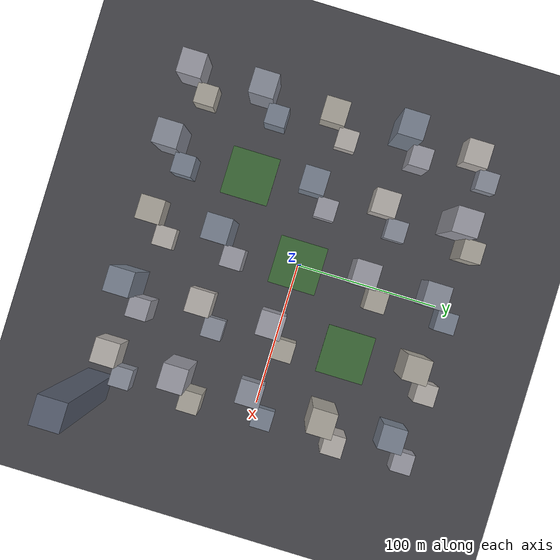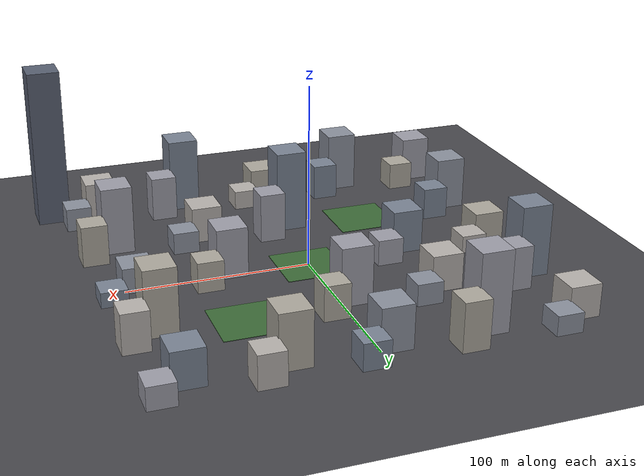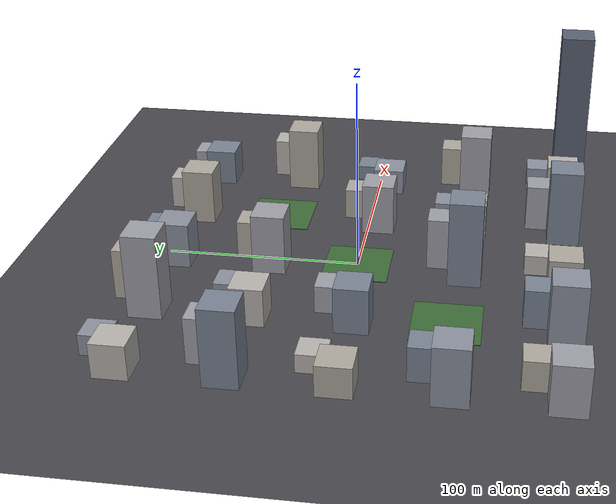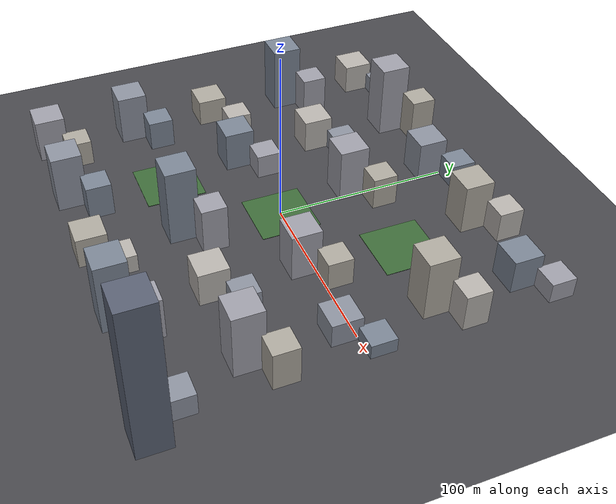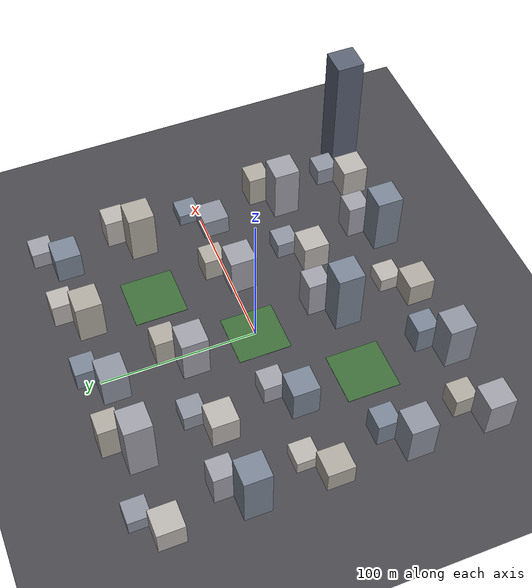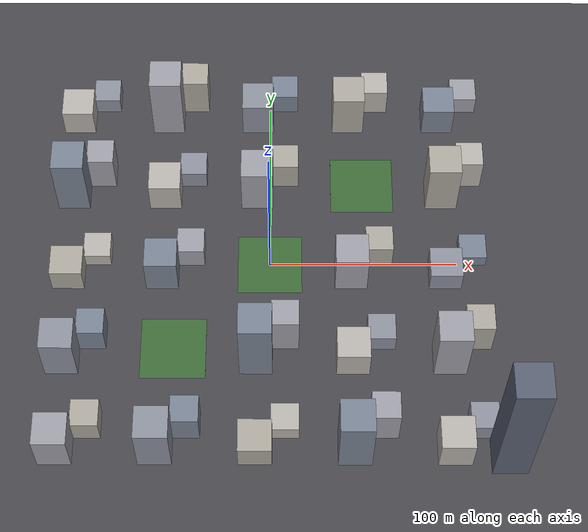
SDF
<?xml version="1.0" encoding="UTF-8"?>
<!-- Generated for Agentic Robotics. Primitives only: no Fuel dependencies, so
     it loads identically offline and on a CPU-only machine. -->
<sdf version="1.9">
  <world name="agr_city">
    <physics type="ode">
      <max_step_size>0.004</max_step_size>
      <real_time_factor>1.0</real_time_factor>
      <real_time_update_rate>250</real_time_update_rate>
    </physics>
    <gravity>0 0 -9.8</gravity>
    <magnetic_field>6e-06 2.3e-05 -4.2e-05</magnetic_field>
    <atmosphere type="adiabatic"/>
    <scene>
      <grid>false</grid>
      <ambient>0.45 0.45 0.45 1</ambient>
      <background>0.75 0.80 0.88 1</background>
      <shadows>true</shadows>
    </scene>

    <model name="ground_plane">
      <static>true</static>
      <link name="link">
        <collision name="collision">
          <geometry><plane><normal>0 0 1</normal><size>1 1</size></plane></geometry>
          <surface><friction><ode/></friction><bounce/><contact/></surface>
        </collision>
        <visual name="visual">
          <geometry><plane><normal>0 0 1</normal><size>1000 1000</size></plane></geometry>
          <material>
            <ambient>0.28 0.28 0.3 1</ambient>
            <diffuse>0.28 0.28 0.3 1</diffuse>
            <specular>0.1 0.1 0.1 1</specular>
          </material>
        </visual>
      </link>
    </model>

    <light name="sunUTC" type="directional">
      <pose>0 0 500 0 -0 0</pose>
      <cast_shadows>true</cast_shadows>
      <intensity>1</intensity>
      <direction>0.001 0.625 -0.78</direction>
      <diffuse>0.904 0.904 0.904 1</diffuse>
      <specular>0.271 0.271 0.271 1</specular>
      <attenuation><range>2000</range><linear>0</linear><constant>1</constant><quadratic>0</quadratic></attenuation>
      <spot><inner_angle>0</inner_angle><outer_angle>0</outer_angle><falloff>0</falloff></spot>
    </light>

    <spherical_coordinates>
      <surface_model>EARTH_WGS84</surface_model>
      <world_frame_orientation>ENU</world_frame_orientation>
      <latitude_deg>24.7136</latitude_deg>
      <longitude_deg>46.6753</longitude_deg>
      <elevation>612</elevation>
    </spherical_coordinates>

    <model name="bldg_0_0a">
      <static>true</static>
      <pose>-107.00 -106.00 13.00 0 0 0.0000</pose>
      <link name="link">
        <collision name="c">
          <geometry><box><size>17.0 17.0 26</size></box></geometry>
        </collision>
        <visual name="v">
          <geometry><box><size>17.0 17.0 26</size></box></geometry>
          <material>
            <ambient>0.62 0.62 0.66 1</ambient>
            <diffuse>0.62 0.62 0.66 1</diffuse>
            <specular>0.2 0.2 0.2 1</specular>
          </material>

        </visual>
      </link>
    </model>
    <model name="bldg_0_0b">
      <static>true</static>
      <pose>-92.00 -93.00 7.80 0 0 0.0000</pose>
      <link name="link">
        <collision name="c">
          <geometry><box><size>14.28 14.28 15.6</size></box></geometry>
        </collision>
        <visual name="v">
          <geometry><box><size>14.28 14.28 15.6</size></box></geometry>
          <material>
            <ambient>0.68 0.66 0.62 1</ambient>
            <diffuse>0.68 0.66 0.62 1</diffuse>
            <specular>0.2 0.2 0.2 1</specular>
          </material>

        </visual>
      </link>
    </model>
    <model name="bldg_0_1a">
      <static>true</static>
      <pose>-57.00 -106.00 17.00 0 0 0.0000</pose>
      <link name="link">
        <collision name="c">
          <geometry><box><size>17.0 17.0 34</size></box></geometry>
        </collision>
        <visual name="v">
          <geometry><box><size>17.0 17.0 34</size></box></geometry>
          <material>
            <ambient>0.55 0.57 0.62 1</ambient>
            <diffuse>0.55 0.57 0.62 1</diffuse>
            <specular>0.2 0.2 0.2 1</specular>
          </material>

        </visual>
      </link>
    </model>
    <model name="bldg_0_1b">
      <static>true</static>
      <pose>-42.00 -93.00 10.20 0 0 0.0000</pose>
      <link name="link">
        <collision name="c">
          <geometry><box><size>14.28 14.28 20.4</size></box></geometry>
        </collision>
        <visual name="v">
          <geometry><box><size>14.28 14.28 20.4</size></box></geometry>
          <material>
            <ambient>0.48 0.52 0.58 1</ambient>
            <diffuse>0.48 0.52 0.58 1</diffuse>
            <specular>0.2 0.2 0.2 1</specular>
          </material>

        </visual>
      </link>
    </model>
    <model name="bldg_0_2a">
      <static>true</static>
      <pose>-7.00 -106.00 9.00 0 0 0.0000</pose>
      <link name="link">
        <collision name="c">
          <geometry><box><size>17.0 17.0 18</size></box></geometry>
        </collision>
        <visual name="v">
          <geometry><box><size>17.0 17.0 18</size></box></geometry>
          <material>
            <ambient>0.68 0.66 0.62 1</ambient>
            <diffuse>0.68 0.66 0.62 1</diffuse>
            <specular>0.2 0.2 0.2 1</specular>
          </material>

        </visual>
      </link>
    </model>
    <model name="bldg_0_2b">
      <static>true</static>
      <pose>8.00 -93.00 5.40 0 0 0.0000</pose>
      <link name="link">
        <collision name="c">
          <geometry><box><size>14.28 14.28 10.799999999999999</size></box></geometry>
        </collision>
        <visual name="v">
          <geometry><box><size>14.28 14.28 10.799999999999999</size></box></geometry>
          <material>
            <ambient>0.72 0.7 0.68 1</ambient>
            <diffuse>0.72 0.7 0.68 1</diffuse>
            <specular>0.2 0.2 0.2 1</specular>
          </material>

        </visual>
      </link>
    </model>
    <model name="bldg_0_3a">
      <static>true</static>
      <pose>43.00 -106.00 21.00 0 0 0.0000</pose>
      <link name="link">
        <collision name="c">
          <geometry><box><size>17.0 17.0 42</size></box></geometry>
        </collision>
        <visual name="v">
          <geometry><box><size>17.0 17.0 42</size></box></geometry>
          <material>
            <ambient>0.48 0.52 0.58 1</ambient>
            <diffuse>0.48 0.52 0.58 1</diffuse>
            <specular>0.2 0.2 0.2 1</specular>
          </material>

        </visual>
      </link>
    </model>
    <model name="bldg_0_3b">
      <static>true</static>
      <pose>58.00 -93.00 12.60 0 0 0.0000</pose>
      <link name="link">
        <collision name="c">
          <geometry><box><size>14.28 14.28 25.2</size></box></geometry>
        </collision>
        <visual name="v">
          <geometry><box><size>14.28 14.28 25.2</size></box></geometry>
          <material>
            <ambient>0.62 0.62 0.66 1</ambient>
            <diffuse>0.62 0.62 0.66 1</diffuse>
            <specular>0.2 0.2 0.2 1</specular>
          </material>

        </visual>
      </link>
    </model>
    <model name="bldg_0_4a">
      <static>true</static>
      <pose>93.00 -106.00 11.00 0 0 0.0000</pose>
      <link name="link">
        <collision name="c">
          <geometry><box><size>17.0 17.0 22</size></box></geometry>
        </collision>
        <visual name="v">
          <geometry><box><size>17.0 17.0 22</size></box></geometry>
          <material>
            <ambient>0.72 0.7 0.68 1</ambient>
            <diffuse>0.72 0.7 0.68 1</diffuse>
            <specular>0.2 0.2 0.2 1</specular>
          </material>

        </visual>
      </link>
    </model>
    <model name="bldg_0_4b">
      <static>true</static>
      <pose>108.00 -93.00 6.60 0 0 0.0000</pose>
      <link name="link">
        <collision name="c">
          <geometry><box><size>14.28 14.28 13.2</size></box></geometry>
        </collision>
        <visual name="v">
          <geometry><box><size>14.28 14.28 13.2</size></box></geometry>
          <material>
            <ambient>0.55 0.57 0.62 1</ambient>
            <diffuse>0.55 0.57 0.62 1</diffuse>
            <specular>0.2 0.2 0.2 1</specular>
          </material>

        </visual>
      </link>
    </model>
    <model name="bldg_1_0a">
      <static>true</static>
      <pose>-107.00 -56.00 15.00 0 0 0.0000</pose>
      <link name="link">
        <collision name="c">
          <geometry><box><size>17.0 17.0 30</size></box></geometry>
        </collision>
        <visual name="v">
          <geometry><box><size>17.0 17.0 30</size></box></geometry>
          <material>
            <ambient>0.55 0.57 0.62 1</ambient>
            <diffuse>0.55 0.57 0.62 1</diffuse>
            <specular>0.2 0.2 0.2 1</specular>
          </material>

        </visual>
      </link>
    </model>
    <model name="bldg_1_0b">
      <static>true</static>
      <pose>-92.00 -43.00 9.00 0 0 0.0000</pose>
      <link name="link">
        <collision name="c">
          <geometry><box><size>14.28 14.28 18.0</size></box></geometry>
        </collision>
        <visual name="v">
          <geometry><box><size>14.28 14.28 18.0</size></box></geometry>
          <material>
            <ambient>0.48 0.52 0.58 1</ambient>
            <diffuse>0.48 0.52 0.58 1</diffuse>
            <specular>0.2 0.2 0.2 1</specular>
          </material>

        </visual>
      </link>
    </model>
    <model name="park_1_1">
      <static>true</static>
      <pose>-50.00 -50.00 0.15 0 0 0.0000</pose>
      <link name="link">
        <collision name="c">
          <geometry><box><size>34.0 34.0 0.3</size></box></geometry>
        </collision>
        <visual name="v">
          <geometry><box><size>34.0 34.0 0.3</size></box></geometry>
          <material>
            <ambient>0.24 0.42 0.22 1</ambient>
            <diffuse>0.24 0.42 0.22 1</diffuse>
            <specular>0.2 0.2 0.2 1</specular>
          </material>

        </visual>
      </link>
    </model>
    <model name="bldg_1_2a">
      <static>true</static>
      <pose>-7.00 -56.00 23.00 0 0 0.0000</pose>
      <link name="link">
        <collision name="c">
          <geometry><box><size>17.0 17.0 46</size></box></geometry>
        </collision>
        <visual name="v">
          <geometry><box><size>17.0 17.0 46</size></box></geometry>
          <material>
            <ambient>0.48 0.52 0.58 1</ambient>
            <diffuse>0.48 0.52 0.58 1</diffuse>
            <specular>0.2 0.2 0.2 1</specular>
          </material>

        </visual>
      </link>
    </model>
    <model name="bldg_1_2b">
      <static>true</static>
      <pose>8.00 -43.00 13.80 0 0 0.0000</pose>
      <link name="link">
        <collision name="c">
          <geometry><box><size>14.28 14.28 27.599999999999998</size></box></geometry>
        </collision>
        <visual name="v">
          <geometry><box><size>14.28 14.28 27.599999999999998</size></box></geometry>
          <material>
            <ambient>0.62 0.62 0.66 1</ambient>
            <diffuse>0.62 0.62 0.66 1</diffuse>
            <specular>0.2 0.2 0.2 1</specular>
          </material>

        </visual>
      </link>
    </model>
    <model name="bldg_1_3a">
      <static>true</static>
      <pose>43.00 -56.00 10.00 0 0 0.0000</pose>
      <link name="link">
        <collision name="c">
          <geometry><box><size>17.0 17.0 20</size></box></geometry>
        </collision>
        <visual name="v">
          <geometry><box><size>17.0 17.0 20</size></box></geometry>
          <material>
            <ambient>0.72 0.7 0.68 1</ambient>
            <diffuse>0.72 0.7 0.68 1</diffuse>
            <specular>0.2 0.2 0.2 1</specular>
          </material>

        </visual>
      </link>
    </model>
    <model name="bldg_1_3b">
      <static>true</static>
      <pose>58.00 -43.00 6.00 0 0 0.0000</pose>
      <link name="link">
        <collision name="c">
          <geometry><box><size>14.28 14.28 12.0</size></box></geometry>
        </collision>
        <visual name="v">
          <geometry><box><size>14.28 14.28 12.0</size></box></geometry>
          <material>
            <ambient>0.55 0.57 0.62 1</ambient>
            <diffuse>0.55 0.57 0.62 1</diffuse>
            <specular>0.2 0.2 0.2 1</specular>
          </material>

        </visual>
      </link>
    </model>
    <model name="bldg_1_4a">
      <static>true</static>
      <pose>93.00 -56.00 19.00 0 0 0.0000</pose>
      <link name="link">
        <collision name="c">
          <geometry><box><size>17.0 17.0 38</size></box></geometry>
        </collision>
        <visual name="v">
          <geometry><box><size>17.0 17.0 38</size></box></geometry>
          <material>
            <ambient>0.62 0.62 0.66 1</ambient>
            <diffuse>0.62 0.62 0.66 1</diffuse>
            <specular>0.2 0.2 0.2 1</specular>
          </material>

        </visual>
      </link>
    </model>
    <model name="bldg_1_4b">
      <static>true</static>
      <pose>108.00 -43.00 11.40 0 0 0.0000</pose>
      <link name="link">
        <collision name="c">
          <geometry><box><size>14.28 14.28 22.8</size></box></geometry>
        </collision>
        <visual name="v">
          <geometry><box><size>14.28 14.28 22.8</size></box></geometry>
          <material>
            <ambient>0.68 0.66 0.62 1</ambient>
            <diffuse>0.68 0.66 0.62 1</diffuse>
            <specular>0.2 0.2 0.2 1</specular>
          </material>

        </visual>
      </link>
    </model>
    <model name="bldg_2_0a">
      <static>true</static>
      <pose>-107.00 -6.00 8.00 0 0 0.0000</pose>
      <link name="link">
        <collision name="c">
          <geometry><box><size>17.0 17.0 16</size></box></geometry>
        </collision>
        <visual name="v">
          <geometry><box><size>17.0 17.0 16</size></box></geometry>
          <material>
            <ambient>0.68 0.66 0.62 1</ambient>
            <diffuse>0.68 0.66 0.62 1</diffuse>
            <specular>0.2 0.2 0.2 1</specular>
          </material>

        </visual>
      </link>
    </model>
    <model name="bldg_2_0b">
      <static>true</static>
      <pose>-92.00 7.00 4.80 0 0 0.0000</pose>
      <link name="link">
        <collision name="c">
          <geometry><box><size>14.28 14.28 9.6</size></box></geometry>
        </collision>
        <visual name="v">
          <geometry><box><size>14.28 14.28 9.6</size></box></geometry>
          <material>
            <ambient>0.72 0.7 0.68 1</ambient>
            <diffuse>0.72 0.7 0.68 1</diffuse>
            <specular>0.2 0.2 0.2 1</specular>
          </material>

        </visual>
      </link>
    </model>
    <model name="bldg_2_1a">
      <static>true</static>
      <pose>-57.00 -6.00 12.00 0 0 0.0000</pose>
      <link name="link">
        <collision name="c">
          <geometry><box><size>17.0 17.0 24</size></box></geometry>
        </collision>
        <visual name="v">
          <geometry><box><size>17.0 17.0 24</size></box></geometry>
          <material>
            <ambient>0.48 0.52 0.58 1</ambient>
            <diffuse>0.48 0.52 0.58 1</diffuse>
            <specular>0.2 0.2 0.2 1</specular>
          </material>

        </visual>
      </link>
    </model>
    <model name="bldg_2_1b">
      <static>true</static>
      <pose>-42.00 7.00 7.20 0 0 0.0000</pose>
      <link name="link">
        <collision name="c">
          <geometry><box><size>14.28 14.28 14.399999999999999</size></box></geometry>
        </collision>
        <visual name="v">
          <geometry><box><size>14.28 14.28 14.399999999999999</size></box></geometry>
          <material>
            <ambient>0.62 0.62 0.66 1</ambient>
            <diffuse>0.62 0.62 0.66 1</diffuse>
            <specular>0.2 0.2 0.2 1</specular>
          </material>

        </visual>
      </link>
    </model>
    <model name="park_2_2">
      <static>true</static>
      <pose>0.00 0.00 0.15 0 0 0.0000</pose>
      <link name="link">
        <collision name="c">
          <geometry><box><size>34.0 34.0 0.3</size></box></geometry>
        </collision>
        <visual name="v">
          <geometry><box><size>34.0 34.0 0.3</size></box></geometry>
          <material>
            <ambient>0.24 0.42 0.22 1</ambient>
            <diffuse>0.24 0.42 0.22 1</diffuse>
            <specular>0.2 0.2 0.2 1</specular>
          </material>

        </visual>
      </link>
    </model>
    <model name="bldg_2_3a">
      <static>true</static>
      <pose>43.00 -6.00 14.00 0 0 0.0000</pose>
      <link name="link">
        <collision name="c">
          <geometry><box><size>17.0 17.0 28</size></box></geometry>
        </collision>
        <visual name="v">
          <geometry><box><size>17.0 17.0 28</size></box></geometry>
          <material>
            <ambient>0.62 0.62 0.66 1</ambient>
            <diffuse>0.62 0.62 0.66 1</diffuse>
            <specular>0.2 0.2 0.2 1</specular>
          </material>

        </visual>
      </link>
    </model>
    <model name="bldg_2_3b">
      <static>true</static>
      <pose>58.00 7.00 8.40 0 0 0.0000</pose>
      <link name="link">
        <collision name="c">
          <geometry><box><size>14.28 14.28 16.8</size></box></geometry>
        </collision>
        <visual name="v">
          <geometry><box><size>14.28 14.28 16.8</size></box></geometry>
          <material>
            <ambient>0.68 0.66 0.62 1</ambient>
            <diffuse>0.68 0.66 0.62 1</diffuse>
            <specular>0.2 0.2 0.2 1</specular>
          </material>

        </visual>
      </link>
    </model>
    <model name="bldg_2_4a">
      <static>true</static>
      <pose>93.00 -6.00 7.00 0 0 0.0000</pose>
      <link name="link">
        <collision name="c">
          <geometry><box><size>17.0 17.0 14</size></box></geometry>
        </collision>
        <visual name="v">
          <geometry><box><size>17.0 17.0 14</size></box></geometry>
          <material>
            <ambient>0.55 0.57 0.62 1</ambient>
            <diffuse>0.55 0.57 0.62 1</diffuse>
            <specular>0.2 0.2 0.2 1</specular>
          </material>

        </visual>
      </link>
    </model>
    <model name="bldg_2_4b">
      <static>true</static>
      <pose>108.00 7.00 4.20 0 0 0.0000</pose>
      <link name="link">
        <collision name="c">
          <geometry><box><size>14.28 14.28 8.4</size></box></geometry>
        </collision>
        <visual name="v">
          <geometry><box><size>14.28 14.28 8.4</size></box></geometry>
          <material>
            <ambient>0.48 0.52 0.58 1</ambient>
            <diffuse>0.48 0.52 0.58 1</diffuse>
            <specular>0.2 0.2 0.2 1</specular>
          </material>

        </visual>
      </link>
    </model>
    <model name="bldg_3_0a">
      <static>true</static>
      <pose>-107.00 44.00 20.00 0 0 0.0000</pose>
      <link name="link">
        <collision name="c">
          <geometry><box><size>17.0 17.0 40</size></box></geometry>
        </collision>
        <visual name="v">
          <geometry><box><size>17.0 17.0 40</size></box></geometry>
          <material>
            <ambient>0.48 0.52 0.58 1</ambient>
            <diffuse>0.48 0.52 0.58 1</diffuse>
            <specular>0.2 0.2 0.2 1</specular>
          </material>

        </visual>
      </link>
    </model>
    <model name="bldg_3_0b">
      <static>true</static>
      <pose>-92.00 57.00 12.00 0 0 0.0000</pose>
      <link name="link">
        <collision name="c">
          <geometry><box><size>14.28 14.28 24.0</size></box></geometry>
        </collision>
        <visual name="v">
          <geometry><box><size>14.28 14.28 24.0</size></box></geometry>
          <material>
            <ambient>0.62 0.62 0.66 1</ambient>
            <diffuse>0.62 0.62 0.66 1</diffuse>
            <specular>0.2 0.2 0.2 1</specular>
          </material>

        </visual>
      </link>
    </model>
    <model name="bldg_3_1a">
      <static>true</static>
      <pose>-57.00 44.00 10.00 0 0 0.0000</pose>
      <link name="link">
        <collision name="c">
          <geometry><box><size>17.0 17.0 20</size></box></geometry>
        </collision>
        <visual name="v">
          <geometry><box><size>17.0 17.0 20</size></box></geometry>
          <material>
            <ambient>0.72 0.7 0.68 1</ambient>
            <diffuse>0.72 0.7 0.68 1</diffuse>
            <specular>0.2 0.2 0.2 1</specular>
          </material>

        </visual>
      </link>
    </model>
    <model name="bldg_3_1b">
      <static>true</static>
      <pose>-42.00 57.00 6.00 0 0 0.0000</pose>
      <link name="link">
        <collision name="c">
          <geometry><box><size>14.28 14.28 12.0</size></box></geometry>
        </collision>
        <visual name="v">
          <geometry><box><size>14.28 14.28 12.0</size></box></geometry>
          <material>
            <ambient>0.55 0.57 0.62 1</ambient>
            <diffuse>0.55 0.57 0.62 1</diffuse>
            <specular>0.2 0.2 0.2 1</specular>
          </material>

        </visual>
      </link>
    </model>
    <model name="bldg_3_2a">
      <static>true</static>
      <pose>-7.00 44.00 16.00 0 0 0.0000</pose>
      <link name="link">
        <collision name="c">
          <geometry><box><size>17.0 17.0 32</size></box></geometry>
        </collision>
        <visual name="v">
          <geometry><box><size>17.0 17.0 32</size></box></geometry>
          <material>
            <ambient>0.62 0.62 0.66 1</ambient>
            <diffuse>0.62 0.62 0.66 1</diffuse>
            <specular>0.2 0.2 0.2 1</specular>
          </material>

        </visual>
      </link>
    </model>
    <model name="bldg_3_2b">
      <static>true</static>
      <pose>8.00 57.00 9.60 0 0 0.0000</pose>
      <link name="link">
        <collision name="c">
          <geometry><box><size>14.28 14.28 19.2</size></box></geometry>
        </collision>
        <visual name="v">
          <geometry><box><size>14.28 14.28 19.2</size></box></geometry>
          <material>
            <ambient>0.68 0.66 0.62 1</ambient>
            <diffuse>0.68 0.66 0.62 1</diffuse>
            <specular>0.2 0.2 0.2 1</specular>
          </material>

        </visual>
      </link>
    </model>
    <model name="park_3_3">
      <static>true</static>
      <pose>50.00 50.00 0.15 0 0 0.0000</pose>
      <link name="link">
        <collision name="c">
          <geometry><box><size>34.0 34.0 0.3</size></box></geometry>
        </collision>
        <visual name="v">
          <geometry><box><size>34.0 34.0 0.3</size></box></geometry>
          <material>
            <ambient>0.24 0.42 0.22 1</ambient>
            <diffuse>0.24 0.42 0.22 1</diffuse>
            <specular>0.2 0.2 0.2 1</specular>
          </material>

        </visual>
      </link>
    </model>
    <model name="bldg_3_4a">
      <static>true</static>
      <pose>93.00 44.00 18.00 0 0 0.0000</pose>
      <link name="link">
        <collision name="c">
          <geometry><box><size>17.0 17.0 36</size></box></geometry>
        </collision>
        <visual name="v">
          <geometry><box><size>17.0 17.0 36</size></box></geometry>
          <material>
            <ambient>0.68 0.66 0.62 1</ambient>
            <diffuse>0.68 0.66 0.62 1</diffuse>
            <specular>0.2 0.2 0.2 1</specular>
          </material>

        </visual>
      </link>
    </model>
    <model name="bldg_3_4b">
      <static>true</static>
      <pose>108.00 57.00 10.80 0 0 0.0000</pose>
      <link name="link">
        <collision name="c">
          <geometry><box><size>14.28 14.28 21.599999999999998</size></box></geometry>
        </collision>
        <visual name="v">
          <geometry><box><size>14.28 14.28 21.599999999999998</size></box></geometry>
          <material>
            <ambient>0.72 0.7 0.68 1</ambient>
            <diffuse>0.72 0.7 0.68 1</diffuse>
            <specular>0.2 0.2 0.2 1</specular>
          </material>

        </visual>
      </link>
    </model>
    <model name="bldg_4_0a">
      <static>true</static>
      <pose>-107.00 94.00 9.00 0 0 0.0000</pose>
      <link name="link">
        <collision name="c">
          <geometry><box><size>17.0 17.0 18</size></box></geometry>
        </collision>
        <visual name="v">
          <geometry><box><size>17.0 17.0 18</size></box></geometry>
          <material>
            <ambient>0.72 0.7 0.68 1</ambient>
            <diffuse>0.72 0.7 0.68 1</diffuse>
            <specular>0.2 0.2 0.2 1</specular>
          </material>

        </visual>
      </link>
    </model>
    <model name="bldg_4_0b">
      <static>true</static>
      <pose>-92.00 107.00 5.40 0 0 0.0000</pose>
      <link name="link">
        <collision name="c">
          <geometry><box><size>14.28 14.28 10.799999999999999</size></box></geometry>
        </collision>
        <visual name="v">
          <geometry><box><size>14.28 14.28 10.799999999999999</size></box></geometry>
          <material>
            <ambient>0.55 0.57 0.62 1</ambient>
            <diffuse>0.55 0.57 0.62 1</diffuse>
            <specular>0.2 0.2 0.2 1</specular>
          </material>

        </visual>
      </link>
    </model>
    <model name="bldg_4_1a">
      <static>true</static>
      <pose>-57.00 94.00 22.00 0 0 0.0000</pose>
      <link name="link">
        <collision name="c">
          <geometry><box><size>17.0 17.0 44</size></box></geometry>
        </collision>
        <visual name="v">
          <geometry><box><size>17.0 17.0 44</size></box></geometry>
          <material>
            <ambient>0.62 0.62 0.66 1</ambient>
            <diffuse>0.62 0.62 0.66 1</diffuse>
            <specular>0.2 0.2 0.2 1</specular>
          </material>

        </visual>
      </link>
    </model>
    <model name="bldg_4_1b">
      <static>true</static>
      <pose>-42.00 107.00 13.20 0 0 0.0000</pose>
      <link name="link">
        <collision name="c">
          <geometry><box><size>14.28 14.28 26.4</size></box></geometry>
        </collision>
        <visual name="v">
          <geometry><box><size>14.28 14.28 26.4</size></box></geometry>
          <material>
            <ambient>0.68 0.66 0.62 1</ambient>
            <diffuse>0.68 0.66 0.62 1</diffuse>
            <specular>0.2 0.2 0.2 1</specular>
          </material>

        </visual>
      </link>
    </model>
    <model name="bldg_4_2a">
      <static>true</static>
      <pose>-7.00 94.00 12.00 0 0 0.0000</pose>
      <link name="link">
        <collision name="c">
          <geometry><box><size>17.0 17.0 24</size></box></geometry>
        </collision>
        <visual name="v">
          <geometry><box><size>17.0 17.0 24</size></box></geometry>
          <material>
            <ambient>0.55 0.57 0.62 1</ambient>
            <diffuse>0.55 0.57 0.62 1</diffuse>
            <specular>0.2 0.2 0.2 1</specular>
          </material>

        </visual>
      </link>
    </model>
    <model name="bldg_4_2b">
      <static>true</static>
      <pose>8.00 107.00 7.20 0 0 0.0000</pose>
      <link name="link">
        <collision name="c">
          <geometry><box><size>14.28 14.28 14.399999999999999</size></box></geometry>
        </collision>
        <visual name="v">
          <geometry><box><size>14.28 14.28 14.399999999999999</size></box></geometry>
          <material>
            <ambient>0.48 0.52 0.58 1</ambient>
            <diffuse>0.48 0.52 0.58 1</diffuse>
            <specular>0.2 0.2 0.2 1</specular>
          </material>

        </visual>
      </link>
    </model>
    <model name="bldg_4_3a">
      <static>true</static>
      <pose>43.00 94.00 15.00 0 0 0.0000</pose>
      <link name="link">
        <collision name="c">
          <geometry><box><size>17.0 17.0 30</size></box></geometry>
        </collision>
        <visual name="v">
          <geometry><box><size>17.0 17.0 30</size></box></geometry>
          <material>
            <ambient>0.68 0.66 0.62 1</ambient>
            <diffuse>0.68 0.66 0.62 1</diffuse>
            <specular>0.2 0.2 0.2 1</specular>
          </material>

        </visual>
      </link>
    </model>
    <model name="bldg_4_3b">
      <static>true</static>
      <pose>58.00 107.00 9.00 0 0 0.0000</pose>
      <link name="link">
        <collision name="c">
          <geometry><box><size>14.28 14.28 18.0</size></box></geometry>
        </collision>
        <visual name="v">
          <geometry><box><size>14.28 14.28 18.0</size></box></geometry>
          <material>
            <ambient>0.72 0.7 0.68 1</ambient>
            <diffuse>0.72 0.7 0.68 1</diffuse>
            <specular>0.2 0.2 0.2 1</specular>
          </material>

        </visual>
      </link>
    </model>
    <model name="bldg_4_4a">
      <static>true</static>
      <pose>93.00 94.00 10.00 0 0 0.0000</pose>
      <link name="link">
        <collision name="c">
          <geometry><box><size>17.0 17.0 20</size></box></geometry>
        </collision>
        <visual name="v">
          <geometry><box><size>17.0 17.0 20</size></box></geometry>
          <material>
            <ambient>0.48 0.52 0.58 1</ambient>
            <diffuse>0.48 0.52 0.58 1</diffuse>
            <specular>0.2 0.2 0.2 1</specular>
          </material>

        </visual>
      </link>
    </model>
    <model name="bldg_4_4b">
      <static>true</static>
      <pose>108.00 107.00 6.00 0 0 0.0000</pose>
      <link name="link">
        <collision name="c">
          <geometry><box><size>14.28 14.28 12.0</size></box></geometry>
        </collision>
        <visual name="v">
          <geometry><box><size>14.28 14.28 12.0</size></box></geometry>
          <material>
            <ambient>0.62 0.62 0.66 1</ambient>
            <diffuse>0.62 0.62 0.66 1</diffuse>
            <specular>0.2 0.2 0.2 1</specular>
          </material>

        </visual>
      </link>
    </model>
    <model name="tower_landmark">
      <static>true</static>
      <pose>120.00 -110.00 45.00 0 0 0.0000</pose>
      <link name="link">
        <collision name="c">
          <geometry><box><size>18 18 90</size></box></geometry>
        </collision>
        <visual name="v">
          <geometry><box><size>18 18 90</size></box></geometry>
          <material>
            <ambient>0.35 0.38 0.45 1</ambient>
            <diffuse>0.35 0.38 0.45 1</diffuse>
            <specular>0.2 0.2 0.2 1</specular>
          </material>

        </visual>
      </link>
    </model>
    <model name="helipad">
      <static>true</static>
      <pose>0.00 0.00 0.05 0 0 0</pose>
      <link name="link">
        <collision name="c">
          <geometry><cylinder><radius>6.0</radius><length>0.1</length></cylinder></geometry>
        </collision>
        <visual name="v">
          <geometry><cylinder><radius>6.0</radius><length>0.1</length></cylinder></geometry>
          <material>
            <ambient>0.85 0.85 0.85 1</ambient>
            <diffuse>0.85 0.85 0.85 1</diffuse>
          </material>

        </visual>
      </link>
    </model>
    <model name="helipad_ring">
      <static>true</static>
      <pose>0.00 0.00 0.11 0 0 0</pose>
      <link name="link">
        <collision name="c">
          <geometry><cylinder><radius>4.2</radius><length>0.02</length></cylinder></geometry>
        </collision>
        <visual name="v">
          <geometry><cylinder><radius>4.2</radius><length>0.02</length></cylinder></geometry>
          <material>
            <ambient>0.15 0.15 0.15 1</ambient>
            <diffuse>0.15 0.15 0.15 1</diffuse>
          </material>

        </visual>
      </link>
    </model>
  </world>
</sdf>
